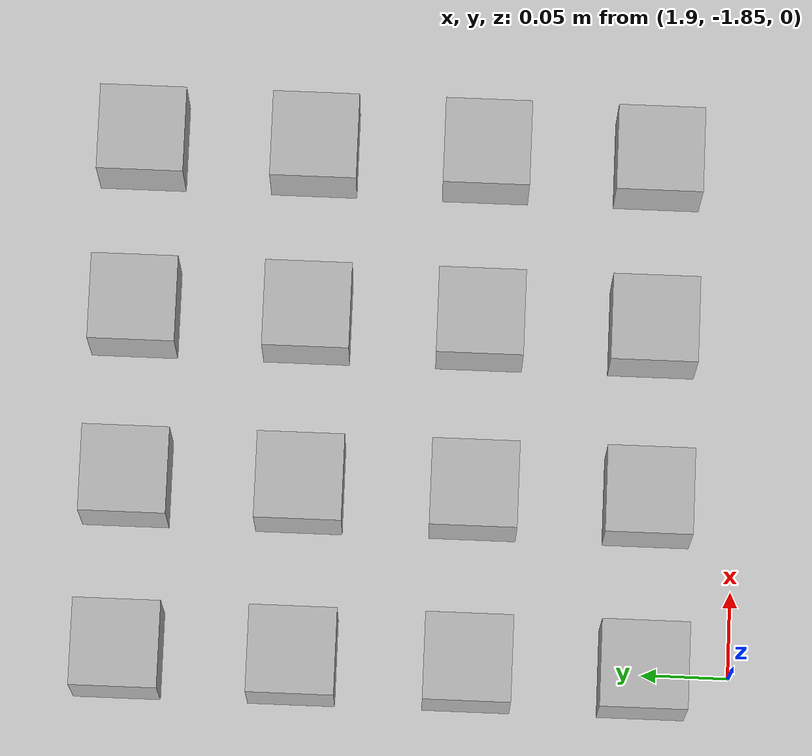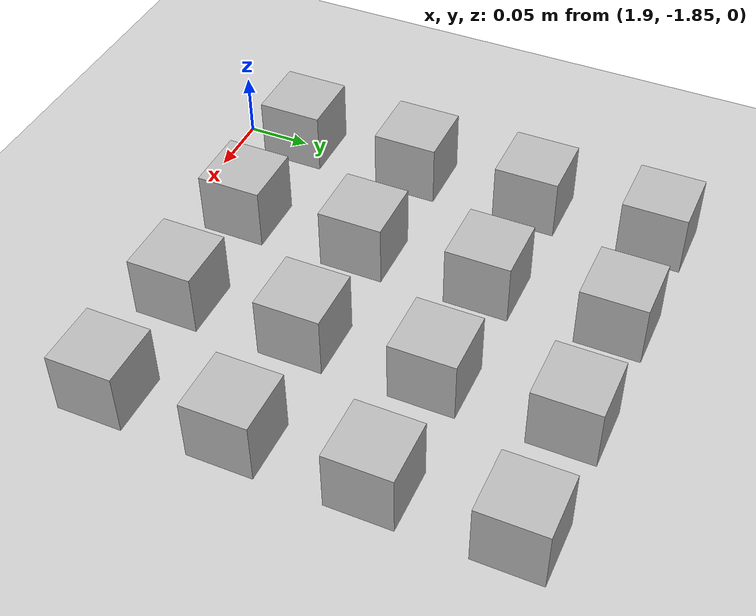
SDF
<sdf version="1.6">
 <world name="default">
  <model name="ground_plane">
   <static>1</static>
   <link name="link">
    <collision name="collision">
     <geometry><plane><normal>0 0 1</normal><size>100 100</size></plane></geometry>
     <surface><friction><ode><mu>100</mu><mu2>50</mu2></ode></friction></surface>
    </collision>
    <visual name="visual">
     <cast_shadows>0</cast_shadows>
     <geometry><plane><normal>0 0 1</normal><size>100 100</size></plane></geometry>
     <material>
      <script><uri>file://media/materials/scripts/gazebo.material</uri><name>Gazebo/Grey</name></script>
     </material>
    </visual>
   </link>
  </model>
  <model name="at100">
   <static>0</static>
   <link name="link">
    <inertial>
     <mass>0.01</mass>
     <inertia><ixx>4e-05</ixx><ixy>0</ixy><ixz>0</ixz><iyy>4e-05</iyy><iyz>0</iyz><izz>4e-05</izz></inertia>
    </inertial>
    <visual name="visual">
     <geometry><box><size>0.05 0.05 0.05</size></box></geometry>
     <material>
      <script>
       <uri>model://at0/materials/scripts</uri>
       <uri>model://at0/materials/textures</uri>
       <name>at0/Diffuse</name>
      </script>
     </material>
    </visual>
    <collision name="collision">
     <geometry><box><size>0.05 0.05 0.05</size></box></geometry>
     <surface><friction><ode><mu>0.8</mu><mu2>0.7</mu2></ode></friction></surface>
    </collision>
   </link>
   <pose>1.9 -1.8 0.025 0 -0 0</pose>
  </model>
  <model name="at101">
   <static>0</static>
   <link name="link">
    <inertial>
     <mass>0.01</mass>
     <inertia><ixx>4e-05</ixx><ixy>0</ixy><ixz>0</ixz><iyy>4e-05</iyy><iyz>0</iyz><izz>4e-05</izz></inertia>
    </inertial>
    <visual name="visual">
     <geometry><box><size>0.05 0.05 0.05</size></box></geometry>
     <material>
      <script>
       <uri>model://at0/materials/scripts</uri>
       <uri>model://at0/materials/textures</uri>
       <name>at0/Diffuse</name>
      </script>
     </material>
    </visual>
    <collision name="collision">
     <geometry><box><size>0.05 0.05 0.05</size></box></geometry>
     <surface><friction><ode><mu>0.8</mu><mu2>0.7</mu2></ode></friction></surface>
    </collision>
   </link>
   <pose>2.0 -1.8 0.025 0 -0 0</pose>
  </model>
  <model name="at102">
   <static>0</static>
   <link name="link">
    <inertial>
     <mass>0.01</mass>
     <inertia><ixx>4e-05</ixx><ixy>0</ixy><ixz>0</ixz><iyy>4e-05</iyy><iyz>0</iyz><izz>4e-05</izz></inertia>
    </inertial>
    <visual name="visual">
     <geometry><box><size>0.05 0.05 0.05</size></box></geometry>
     <material>
      <script>
       <uri>model://at0/materials/scripts</uri>
       <uri>model://at0/materials/textures</uri>
       <name>at0/Diffuse</name>
      </script>
     </material>
    </visual>
    <collision name="collision">
     <geometry><box><size>0.05 0.05 0.05</size></box></geometry>
     <surface><friction><ode><mu>0.8</mu><mu2>0.7</mu2></ode></friction></surface>
    </collision>
   </link>
   <pose>2.1 -1.8 0.025 0 -0 0</pose>
  </model>
  <model name="at103">
   <static>0</static>
   <link name="link">
    <inertial>
     <mass>0.01</mass>
     <inertia><ixx>4e-05</ixx><ixy>0</ixy><ixz>0</ixz><iyy>4e-05</iyy><iyz>0</iyz><izz>4e-05</izz></inertia>
    </inertial>
    <visual name="visual">
     <geometry><box><size>0.05 0.05 0.05</size></box></geometry>
     <material>
      <script>
       <uri>model://at0/materials/scripts</uri>
       <uri>model://at0/materials/textures</uri>
       <name>at0/Diffuse</name>
      </script>
     </material>
    </visual>
    <collision name="collision">
     <geometry><box><size>0.05 0.05 0.05</size></box></geometry>
     <surface><friction><ode><mu>0.8</mu><mu2>0.7</mu2></ode></friction></surface>
    </collision>
   </link>
   <pose>2.2 -1.8 0.025 0 -0 0</pose>
  </model>
  <model name="at108">
   <static>0</static>
   <link name="link">
    <inertial>
     <mass>0.01</mass>
     <inertia><ixx>4e-05</ixx><ixy>0</ixy><ixz>0</ixz><iyy>4e-05</iyy><iyz>0</iyz><izz>4e-05</izz></inertia>
    </inertial>
    <visual name="visual">
     <geometry><box><size>0.05 0.05 0.05</size></box></geometry>
     <material>
      <script>
       <uri>model://at0/materials/scripts</uri>
       <uri>model://at0/materials/textures</uri>
       <name>at0/Diffuse</name>
      </script>
     </material>
    </visual>
    <collision name="collision">
     <geometry><box><size>0.05 0.05 0.05</size></box></geometry>
     <surface><friction><ode><mu>0.8</mu><mu2>0.7</mu2></ode></friction></surface>
    </collision>
   </link>
   <pose>1.9 -1.7 0.025 0 -0 0</pose>
  </model>
  <model name="at109">
   <static>0</static>
   <link name="link">
    <inertial>
     <mass>0.01</mass>
     <inertia><ixx>4e-05</ixx><ixy>0</ixy><ixz>0</ixz><iyy>4e-05</iyy><iyz>0</iyz><izz>4e-05</izz></inertia>
    </inertial>
    <visual name="visual">
     <geometry><box><size>0.05 0.05 0.05</size></box></geometry>
     <material>
      <script>
       <uri>model://at0/materials/scripts</uri>
       <uri>model://at0/materials/textures</uri>
       <name>at0/Diffuse</name>
      </script>
     </material>
    </visual>
    <collision name="collision">
     <geometry><box><size>0.05 0.05 0.05</size></box></geometry>
     <surface><friction><ode><mu>0.8</mu><mu2>0.7</mu2></ode></friction></surface>
    </collision>
   </link>
   <pose>2.0 -1.7 0.025 0 -0 0</pose>
  </model>
  <model name="at110">
   <static>0</static>
   <link name="link">
    <inertial>
     <mass>0.01</mass>
     <inertia><ixx>4e-05</ixx><ixy>0</ixy><ixz>0</ixz><iyy>4e-05</iyy><iyz>0</iyz><izz>4e-05</izz></inertia>
    </inertial>
    <visual name="visual">
     <geometry><box><size>0.05 0.05 0.05</size></box></geometry>
     <material>
      <script>
       <uri>model://at0/materials/scripts</uri>
       <uri>model://at0/materials/textures</uri>
       <name>at0/Diffuse</name>
      </script>
     </material>
    </visual>
    <collision name="collision">
     <geometry><box><size>0.05 0.05 0.05</size></box></geometry>
     <surface><friction><ode><mu>0.8</mu><mu2>0.7</mu2></ode></friction></surface>
    </collision>
   </link>
   <pose>2.1 -1.7 0.025 0 -0 0</pose>
  </model>
  <model name="at111">
   <static>0</static>
   <link name="link">
    <inertial>
     <mass>0.01</mass>
     <inertia><ixx>4e-05</ixx><ixy>0</ixy><ixz>0</ixz><iyy>4e-05</iyy><iyz>0</iyz><izz>4e-05</izz></inertia>
    </inertial>
    <visual name="visual">
     <geometry><box><size>0.05 0.05 0.05</size></box></geometry>
     <material>
      <script>
       <uri>model://at0/materials/scripts</uri>
       <uri>model://at0/materials/textures</uri>
       <name>at0/Diffuse</name>
      </script>
     </material>
    </visual>
    <collision name="collision">
     <geometry><box><size>0.05 0.05 0.05</size></box></geometry>
     <surface><friction><ode><mu>0.8</mu><mu2>0.7</mu2></ode></friction></surface>
    </collision>
   </link>
   <pose>2.2 -1.7 0.025 0 -0 0</pose>
  </model>
  <model name="at116">
   <static>0</static>
   <link name="link">
    <inertial>
     <mass>0.01</mass>
     <inertia><ixx>4e-05</ixx><ixy>0</ixy><ixz>0</ixz><iyy>4e-05</iyy><iyz>0</iyz><izz>4e-05</izz></inertia>
    </inertial>
    <visual name="visual">
     <geometry><box><size>0.05 0.05 0.05</size></box></geometry>
     <material>
      <script>
       <uri>model://at0/materials/scripts</uri>
       <uri>model://at0/materials/textures</uri>
       <name>at0/Diffuse</name>
      </script>
     </material>
    </visual>
    <collision name="collision">
     <geometry><box><size>0.05 0.05 0.05</size></box></geometry>
     <surface><friction><ode><mu>0.8</mu><mu2>0.7</mu2></ode></friction></surface>
    </collision>
   </link>
   <pose>1.9 -1.6 0.025 0 -0 0</pose>
  </model>
  <model name="at117">
   <static>0</static>
   <link name="link">
    <inertial>
     <mass>0.01</mass>
     <inertia><ixx>4e-05</ixx><ixy>0</ixy><ixz>0</ixz><iyy>4e-05</iyy><iyz>0</iyz><izz>4e-05</izz></inertia>
    </inertial>
    <visual name="visual">
     <geometry><box><size>0.05 0.05 0.05</size></box></geometry>
     <material>
      <script>
       <uri>model://at0/materials/scripts</uri>
       <uri>model://at0/materials/textures</uri>
       <name>at0/Diffuse</name>
      </script>
     </material>
    </visual>
    <collision name="collision">
     <geometry><box><size>0.05 0.05 0.05</size></box></geometry>
     <surface><friction><ode><mu>0.8</mu><mu2>0.7</mu2></ode></friction></surface>
    </collision>
   </link>
   <pose>2.0 -1.6 0.025 0 -0 0</pose>
  </model>
  <model name="at118">
   <static>0</static>
   <link name="link">
    <inertial>
     <mass>0.01</mass>
     <inertia><ixx>4e-05</ixx><ixy>0</ixy><ixz>0</ixz><iyy>4e-05</iyy><iyz>0</iyz><izz>4e-05</izz></inertia>
    </inertial>
    <visual name="visual">
     <geometry><box><size>0.05 0.05 0.05</size></box></geometry>
     <material>
      <script>
       <uri>model://at0/materials/scripts</uri>
       <uri>model://at0/materials/textures</uri>
       <name>at0/Diffuse</name>
      </script>
     </material>
    </visual>
    <collision name="collision">
     <geometry><box><size>0.05 0.05 0.05</size></box></geometry>
     <surface><friction><ode><mu>0.8</mu><mu2>0.7</mu2></ode></friction></surface>
    </collision>
   </link>
   <pose>2.1 -1.6 0.025 0 -0 0</pose>
  </model>
  <model name="at119">
   <static>0</static>
   <link name="link">
    <inertial>
     <mass>0.01</mass>
     <inertia><ixx>4e-05</ixx><ixy>0</ixy><ixz>0</ixz><iyy>4e-05</iyy><iyz>0</iyz><izz>4e-05</izz></inertia>
    </inertial>
    <visual name="visual">
     <geometry><box><size>0.05 0.05 0.05</size></box></geometry>
     <material>
      <script>
       <uri>model://at0/materials/scripts</uri>
       <uri>model://at0/materials/textures</uri>
       <name>at0/Diffuse</name>
      </script>
     </material>
    </visual>
    <collision name="collision">
     <geometry><box><size>0.05 0.05 0.05</size></box></geometry>
     <surface><friction><ode><mu>0.8</mu><mu2>0.7</mu2></ode></friction></surface>
    </collision>
   </link>
   <pose>2.2 -1.6 0.025 0 -0 0</pose>
  </model>
  <model name="at124">
   <static>0</static>
   <link name="link">
    <inertial>
     <mass>0.01</mass>
     <inertia><ixx>4e-05</ixx><ixy>0</ixy><ixz>0</ixz><iyy>4e-05</iyy><iyz>0</iyz><izz>4e-05</izz></inertia>
    </inertial>
    <visual name="visual">
     <geometry><box><size>0.05 0.05 0.05</size></box></geometry>
     <material>
      <script>
       <uri>model://at0/materials/scripts</uri>
       <uri>model://at0/materials/textures</uri>
       <name>at0/Diffuse</name>
      </script>
     </material>
    </visual>
    <collision name="collision">
     <geometry><box><size>0.05 0.05 0.05</size></box></geometry>
     <surface><friction><ode><mu>0.8</mu><mu2>0.7</mu2></ode></friction></surface>
    </collision>
   </link>
   <pose>1.9 -1.5 0.025 0 -0 0</pose>
  </model>
  <model name="at125">
   <static>0</static>
   <link name="link">
    <inertial>
     <mass>0.01</mass>
     <inertia><ixx>4e-05</ixx><ixy>0</ixy><ixz>0</ixz><iyy>4e-05</iyy><iyz>0</iyz><izz>4e-05</izz></inertia>
    </inertial>
    <visual name="visual">
     <geometry><box><size>0.05 0.05 0.05</size></box></geometry>
     <material>
      <script>
       <uri>model://at0/materials/scripts</uri>
       <uri>model://at0/materials/textures</uri>
       <name>at0/Diffuse</name>
      </script>
     </material>
    </visual>
    <collision name="collision">
     <geometry><box><size>0.05 0.05 0.05</size></box></geometry>
     <surface><friction><ode><mu>0.8</mu><mu2>0.7</mu2></ode></friction></surface>
    </collision>
   </link>
   <pose>2.0 -1.5 0.025 0 -0 0</pose>
  </model>
  <model name="at126">
   <static>0</static>
   <link name="link">
    <inertial>
     <mass>0.01</mass>
     <inertia><ixx>4e-05</ixx><ixy>0</ixy><ixz>0</ixz><iyy>4e-05</iyy><iyz>0</iyz><izz>4e-05</izz></inertia>
    </inertial>
    <visual name="visual">
     <geometry><box><size>0.05 0.05 0.05</size></box></geometry>
     <material>
      <script>
       <uri>model://at0/materials/scripts</uri>
       <uri>model://at0/materials/textures</uri>
       <name>at0/Diffuse</name>
      </script>
     </material>
    </visual>
    <collision name="collision">
     <geometry><box><size>0.05 0.05 0.05</size></box></geometry>
     <surface><friction><ode><mu>0.8</mu><mu2>0.7</mu2></ode></friction></surface>
    </collision>
   </link>
   <pose>2.1 -1.5 0.025 0 -0 0</pose>
  </model>
  <model name="at127">
   <static>0</static>
   <link name="link">
    <inertial>
     <mass>0.01</mass>
     <inertia><ixx>4e-05</ixx><ixy>0</ixy><ixz>0</ixz><iyy>4e-05</iyy><iyz>0</iyz><izz>4e-05</izz></inertia>
    </inertial>
    <visual name="visual">
     <geometry><box><size>0.05 0.05 0.05</size></box></geometry>
     <material>
      <script>
       <uri>model://at0/materials/scripts</uri>
       <uri>model://at0/materials/textures</uri>
       <name>at0/Diffuse</name>
      </script>
     </material>
    </visual>
    <collision name="collision">
     <geometry><box><size>0.05 0.05 0.05</size></box></geometry>
     <surface><friction><ode><mu>0.8</mu><mu2>0.7</mu2></ode></friction></surface>
    </collision>
   </link>
   <pose>2.2 -1.5 0.025 0 -0 0</pose>
  </model>
 </world>
</sdf>
